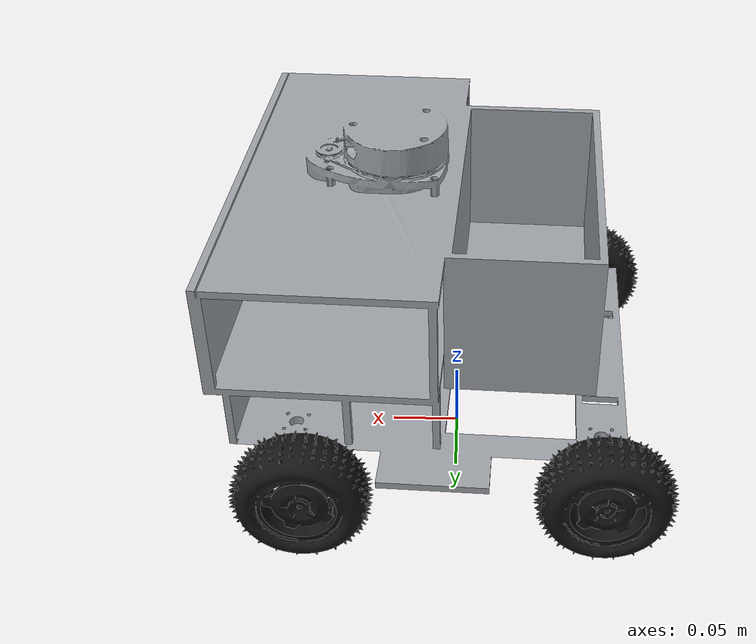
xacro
<?xml version="1.0"?>
<robot name="assembly" xmlns:xacro="http://www.ros.org/wiki/xacro">

  <!-- ===================== ARGUMENTS ===================== -->
  <!-- Set this to true in your launch file to use Gazebo, false for the real Arduino -->
  <xacro:arg name="use_sim" default="false"/>

  <!-- ===================== PARAMETERS ===================== -->
  <xacro:property name="wheel_radius"   value="0.0496"/>  <!-- m, ~99 mm diameter -->
  <xacro:property name="wheel_width"    value="0.039"/>
  <xacro:property name="wheel_x"        value="0.1033"/>  <!-- m, half of wheelbase -->
  <xacro:property name="wheel_y"        value="0.1306"/>  <!-- m, half of track -->
  <xacro:property name="laser_x"        value="0.043"/>   <!-- m forward of base_link centre -->
  <xacro:property name="laser_y"        value="-0.002"/>
  <xacro:property name="laser_z"        value="0.19"/>    <!-- m above base_link -->
  <xacro:property name="imu_x"          value="0.0"/>
  <xacro:property name="imu_y"          value="0.0"/>
  <xacro:property name="imu_z"          value="0.03"/>

  <xacro:property name="chassis_mass"   value="2.2"/>
  <xacro:property name="wheel_mass"     value="0.12"/>

  <!-- chassis collision box (m) -->
  <xacro:property name="cl" value="0.27"/>
  <xacro:property name="cw" value="0.215"/>
  <xacro:property name="ch" value="0.20"/>
  <xacro:property name="cx" value="0.012"/>
  <xacro:property name="cz" value="0.0865"/>

  <material name="body_grey"><color rgba="0.62 0.64 0.66 1.0"/></material>
  <material name="tyre_black"><color rgba="0.08 0.08 0.08 1.0"/></material>

  <!-- ===================== LINKS ===================== -->
  <link name="base_footprint"/>

  <joint name="base_footprint_joint" type="fixed">
    <parent link="base_footprint"/>
    <child link="base_link"/>
    <origin xyz="0 0 ${wheel_radius}" rpy="0 0 0"/>
  </joint>

  <link name="base_link">
    <visual>
      <origin xyz="0 0 0" rpy="0 0 0"/>
      <geometry><mesh filename="package://assembly_description/meshes/body.stl"/></geometry>
      <material name="body_grey"/>
    </visual>
    <collision>
      <origin xyz="${cx} 0 ${cz}" rpy="0 0 0"/>
      <geometry><box size="${cl} ${cw} ${ch}"/></geometry>
    </collision>
    <collision>
      <origin xyz="${laser_x} ${laser_y} 0.187" rpy="0 0 0"/>
      <geometry><cylinder radius="0.035" length="0.05"/></geometry>
    </collision>
    <inertial>
      <origin xyz="${cx} 0 ${cz}" rpy="0 0 0"/>
      <mass value="${chassis_mass}"/>
      <inertia ixx="${chassis_mass/12*(cw**2+ch**2)}" ixy="0" ixz="0"
               iyy="${chassis_mass/12*(cl**2+ch**2)}" iyz="0"
               izz="${chassis_mass/12*(cl**2+cw**2)}"/>
    </inertial>
  </link>

  <!-- ===================== WHEELS ===================== -->
  <!-- mimic_of: name of a joint to copy (used by the rear wheels on the real robot,
       because only the front wheels have encoders / joint states) -->
  <xacro:macro name="wheel" params="prefix x y mimic_of:=''">
    <link name="${prefix}_wheel_link">
      <visual>
        <origin xyz="0 0 0" rpy="0 0 0"/>
        <geometry><mesh filename="package://assembly_description/meshes/wheel_${prefix}.stl"/></geometry>
        <material name="tyre_black"/>
      </visual>
      <collision>
        <origin xyz="0 0 0" rpy="${pi/2} 0 0"/>
        <geometry><cylinder radius="${wheel_radius}" length="${wheel_width}"/></geometry>
      </collision>
      <inertial>
        <origin xyz="0 0 0" rpy="0 0 0"/>
        <mass value="${wheel_mass}"/>
        <inertia ixx="${wheel_mass*(3*wheel_radius**2+wheel_width**2)/12}" ixy="0" ixz="0"
                 iyy="${wheel_mass*wheel_radius**2/2}" iyz="0"
                 izz="${wheel_mass*(3*wheel_radius**2+wheel_width**2)/12}"/>
      </inertial>
    </link>
    <joint name="${prefix}_wheel_joint" type="continuous">
      <parent link="base_link"/>
      <child link="${prefix}_wheel_link"/>
      <origin xyz="${x} ${y} 0" rpy="0 0 0"/>
      <axis xyz="0 1 0"/>
      <dynamics damping="0.01" friction="0.0"/>
      <xacro:if value="${mimic_of != ''}">
        <xacro:unless value="$(arg use_sim)">
          <mimic joint="${mimic_of}" multiplier="1" offset="0"/>
        </xacro:unless>
      </xacro:if>
    </joint>
    <gazebo reference="${prefix}_wheel_link">
      <mu1>1.0</mu1>
      <mu2>1.0</mu2>
    </gazebo>
  </xacro:macro>

  <xacro:wheel prefix="front_left"  x="${wheel_x}"  y="${wheel_y}"/>
  <xacro:wheel prefix="front_right" x="${wheel_x}"  y="${-wheel_y}"/>
  <xacro:wheel prefix="rear_left"   x="${-wheel_x}" y="${wheel_y}"  mimic_of="front_left_wheel_joint"/>
  <xacro:wheel prefix="rear_right"  x="${-wheel_x}" y="${-wheel_y}" mimic_of="front_right_wheel_joint"/>

  <!-- ===================== SENSORS & EXTRA ACTUATORS ===================== -->
  <link name="laser_link"/>
  <joint name="laser_joint" type="fixed">
    <parent link="base_link"/>
    <child link="laser_link"/>
    <origin xyz="${laser_x} ${laser_y} ${laser_z}" rpy="0 0 0"/>
  </joint>

  <link name="imu_link"/>
  <joint name="imu_joint" type="fixed">
    <parent link="base_link"/>
    <child link="imu_link"/>
    <origin xyz="${imu_x} ${imu_y} ${imu_z}" rpy="0 0 0"/>
  </joint>

  <!-- Dummy link for the offloader TT motor -->
  <link name="offloader_link"/>
  <joint name="offloader_joint" type="continuous">
    <parent link="base_link"/>
    <child link="offloader_link"/>
    <origin xyz="0 0 0" rpy="0 0 0"/>
    <axis xyz="0 1 0"/>
  </joint>

  <!-- Camera Frame -->
  <link name="camera_link"/>
  <joint name="camera_joint" type="fixed">
    <parent link="base_link"/>
    <child link="camera_link"/>
    <origin xyz="0.05 0.0 0.13" rpy="0 0 0"/>
  </joint>

  <link name="camera_optical_link"/>
  <joint name="camera_optical_joint" type="fixed">
    <parent link="camera_link"/>
    <child link="camera_optical_link"/>
    <!-- ROS optical frame standard: Z forward, X right, Y down -->
    <origin xyz="0 0 0" rpy="${-pi/2} 0 ${-pi/2}"/>
  </joint>

  <!-- ===================== REAL HARDWARE ===================== -->
  <xacro:unless value="$(arg use_sim)">
    <ros2_control name="RealRobot" type="system">
      <hardware>
        <plugin>diffdrive_arduino/DiffDriveArduino</plugin>
        <!-- The Arduino plugin only accepts 2 wheels for odometry. We map them to the front wheels -->
        <param name="left_wheel_name">front_left_wheel_joint</param>
        <param name="right_wheel_name">front_right_wheel_joint</param>
        <param name="loop_rate">30</param>
        <param name="device">/dev/serial/by-id/usb-Arduino__www.arduino.cc__0043_343313235353513042F0-if00</param>
        <param name="baud_rate">57600</param>
        <param name="timeout">1000</param>
        <param name="enc_counts_per_rev">900</param>
      </hardware>

      <joint name="front_left_wheel_joint">
        <command_interface name="velocity"/>
        <state_interface name="position"/>
        <state_interface name="velocity"/>
      </joint>

      <joint name="front_right_wheel_joint">
        <command_interface name="velocity"/>
        <state_interface name="position"/>
        <state_interface name="velocity"/>
      </joint>

      <joint name="offloader_joint">
        <command_interface name="velocity"/>
      </joint>

      <sensor name="imu_sensor">
        <state_interface name="orientation.x"/>
        <state_interface name="orientation.y"/>
        <state_interface name="orientation.z"/>
        <state_interface name="orientation.w"/>
        <state_interface name="linear_acceleration.x"/>
        <state_interface name="linear_acceleration.y"/>
        <state_interface name="linear_acceleration.z"/>
        <state_interface name="angular_velocity.x"/>
        <state_interface name="angular_velocity.y"/>
        <state_interface name="angular_velocity.z"/>
      </sensor>
    </ros2_control>
  </xacro:unless>

  <!-- ===================== GAZEBO HARMONIC ===================== -->
  <xacro:if value="$(arg use_sim)">
    <gazebo>
      <plugin filename="gz-sim-diff-drive-system" name="gz::sim::systems::DiffDrive">
        <left_joint>front_left_wheel_joint</left_joint>
        <left_joint>rear_left_wheel_joint</left_joint>
        <right_joint>front_right_wheel_joint</right_joint>
        <right_joint>rear_right_wheel_joint</right_joint>
        <wheel_separation>${2*wheel_y}</wheel_separation>
        <wheel_radius>${wheel_radius}</wheel_radius>
        <max_linear_acceleration>1.0</max_linear_acceleration>
        <max_angular_acceleration>2.0</max_angular_acceleration>
        <topic>cmd_vel</topic>
        <odom_topic>odom</odom_topic>
        <tf_topic>diff_drive_tf</tf_topic>
        <frame_id>odom</frame_id>
        <child_frame_id>base_footprint</child_frame_id>
        <odom_publisher_frequency>50</odom_publisher_frequency>
      </plugin>
      <plugin filename="gz-sim-joint-state-publisher-system" name="gz::sim::systems::JointStatePublisher">
        <topic>joint_states</topic>
      </plugin>
    </gazebo>

    <gazebo reference="laser_link">
      <sensor name="rplidar_a1" type="gpu_lidar">
        <gz_frame_id>laser_link</gz_frame_id>
        <topic>scan</topic>
        <update_rate>10</update_rate>
        <always_on>true</always_on>
        <visualize>false</visualize>
        <lidar>
          <scan>
            <horizontal>
              <samples>720</samples>
              <resolution>1</resolution>
              <min_angle>-3.14159</min_angle>
              <max_angle>3.14159</max_angle>
            </horizontal>
          </scan>
          <range><min>0.15</min><max>12.0</max><resolution>0.01</resolution></range>
          <noise><type>gaussian</type><mean>0.0</mean><stddev>0.01</stddev></noise>
        </lidar>
      </sensor>
    </gazebo>

    <gazebo reference="imu_link">
      <sensor name="imu_sensor" type="imu">
        <gz_frame_id>imu_link</gz_frame_id>
        <topic>imu</topic>
        <update_rate>100</update_rate>
        <always_on>true</always_on>
        <imu>
          <angular_velocity>
            <x><noise type="gaussian"><mean>0</mean><stddev>0.0005</stddev></noise></x>
            <y><noise type="gaussian"><mean>0</mean><stddev>0.0005</stddev></noise></y>
            <z><noise type="gaussian"><mean>0</mean><stddev>0.0005</stddev></noise></z>
          </angular_velocity>
          <linear_acceleration>
            <x><noise type="gaussian"><mean>0</mean><stddev>0.01</stddev></noise></x>
            <y><noise type="gaussian"><mean>0</mean><stddev>0.01</stddev></noise></y>
            <z><noise type="gaussian"><mean>0</mean><stddev>0.01</stddev></noise></z>
          </linear_acceleration>
        </imu>
      </sensor>
    </gazebo>

    <gazebo reference="camera_link">
      <sensor name="camera_sensor" type="camera">
        <gz_frame_id>camera_optical_link</gz_frame_id>
        <topic>image_raw</topic>
        <update_rate>30</update_rate>
        <always_on>true</always_on>
        <camera>
          <horizontal_fov>1.047</horizontal_fov>
          <image>
            <width>640</width>
            <height>480</height>
            <format>R8G8B8</format>
          </image>
          <clip>
            <near>0.01</near>
            <far>100</far>
          </clip>
        </camera>
      </sensor>
    </gazebo>
  </xacro:if>

</robot>
